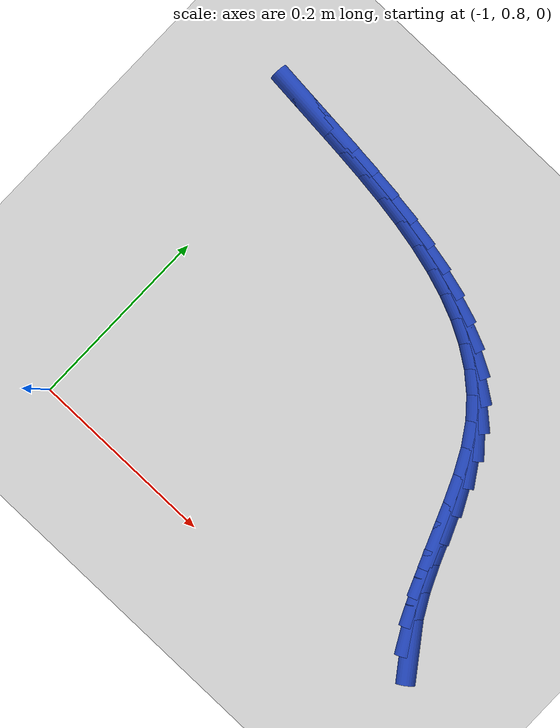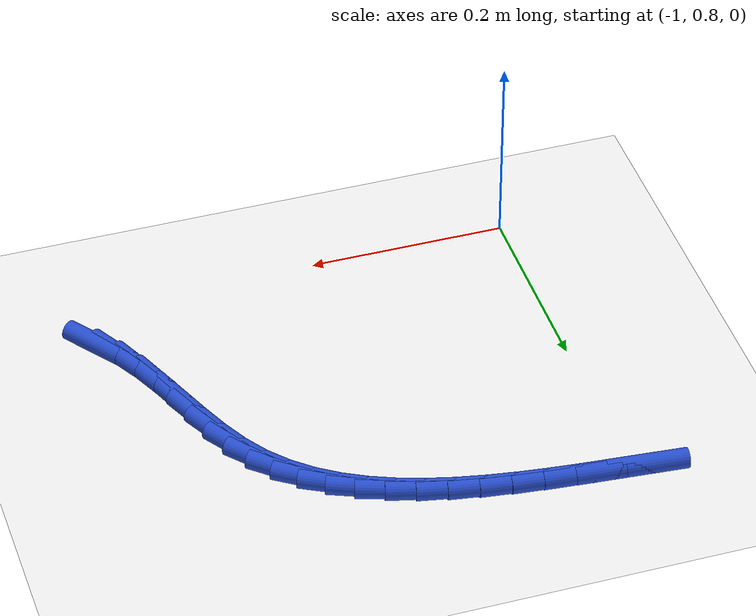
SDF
<sdf version="1.6">
 <world name="default">
  <model name="ground_plane">
   <static>1</static>
   <link name="link">
    <collision name="collision">
     <geometry><plane><normal>0 0 1</normal><size>100 100</size></plane></geometry>
     <surface><friction><ode><mu>100</mu><mu2>50</mu2></ode></friction></surface>
    </collision>
    <visual name="visual">
     <cast_shadows>0</cast_shadows>
     <geometry><plane><normal>0 0 1</normal><size>100 100</size></plane></geometry>
     <material>
      <script><uri>file://media/materials/scripts/gazebo.material</uri><name>Gazebo/WhiteGlow</name></script>
     </material>
    </visual>
   </link>
  </model>
  <model name="line">
   <link name="link_42">
    <pose>-0.56307269899656 0.8650052736421964 0.01 0 1.57 -0.9368571467097474</pose>
    <collision name="collision">
     <geometry><cylinder><radius>0.01</radius><length>0.08</length></cylinder></geometry>
    </collision>
    <visual name="visual">
     <material>
      <script><name>Gazebo/Blue</name><uri>file://media/materials/scripts/gazebo.material</uri></script>
     </material>
     <geometry><cylinder><radius>0.01</radius><length>0.08</length></cylinder></geometry>
    </visual>
   </link>
   <link name="link_43">
    <pose>-0.5792377932902318 0.8869936504903903 0.01 0 1.57 -1.0618978864356188</pose>
    <collision name="collision">
     <geometry><cylinder><radius>0.01</radius><length>0.08</length></cylinder></geometry>
    </collision>
    <visual name="visual">
     <material>
      <script><name>Gazebo/Blue</name><uri>file://media/materials/scripts/gazebo.material</uri></script>
     </material>
     <geometry><cylinder><radius>0.01</radius><length>0.08</length></cylinder></geometry>
    </visual>
   </link>
   <link name="link_44">
    <pose>-0.5931435769148546 0.9119182784585632 0.01 0 1.57 -1.1403024016664975</pose>
    <collision name="collision">
     <geometry><cylinder><radius>0.01</radius><length>0.08</length></cylinder></geometry>
    </collision>
    <visual name="visual">
     <material>
      <script><name>Gazebo/Blue</name><uri>file://media/materials/scripts/gazebo.material</uri></script>
     </material>
     <geometry><cylinder><radius>0.01</radius><length>0.08</length></cylinder></geometry>
    </visual>
   </link>
   <link name="link_45">
    <pose>-0.6055122613548761 0.9388524540209787 0.01 0 1.57 -1.1796590871038244</pose>
    <collision name="collision">
     <geometry><cylinder><radius>0.01</radius><length>0.08</length></cylinder></geometry>
    </collision>
    <visual name="visual">
     <material>
      <script><name>Gazebo/Blue</name><uri>file://media/materials/scripts/gazebo.material</uri></script>
     </material>
     <geometry><cylinder><radius>0.01</radius><length>0.08</length></cylinder></geometry>
    </visual>
   </link>
   <link name="link_46">
    <pose>-0.6170660580947434 0.9668694736519001 0.01 0 1.57 -1.184433164939543</pose>
    <collision name="collision">
     <geometry><cylinder><radius>0.01</radius><length>0.08</length></cylinder></geometry>
    </collision>
    <visual name="visual">
     <material>
      <script><name>Gazebo/Blue</name><uri>file://media/materials/scripts/gazebo.material</uri></script>
     </material>
     <geometry><cylinder><radius>0.01</radius><length>0.08</length></cylinder></geometry>
    </visual>
   </link>
   <link name="link_47">
    <pose>-0.628527178618903 0.9950426338255903 0.01 0 1.57 -1.1552652935465182</pose>
    <collision name="collision">
     <geometry><cylinder><radius>0.01</radius><length>0.08</length></cylinder></geometry>
    </collision>
    <visual name="visual">
     <material>
      <script><name>Gazebo/Blue</name><uri>file://media/materials/scripts/gazebo.material</uri></script>
     </material>
     <geometry><cylinder><radius>0.01</radius><length>0.08</length></cylinder></geometry>
    </visual>
   </link>
   <link name="link_48">
    <pose>-0.6406178344118023 1.0224452310163121 0.01 0 1.57 -1.0889638499875638</pose>
    <collision name="collision">
     <geometry><cylinder><radius>0.01</radius><length>0.08</length></cylinder></geometry>
    </collision>
    <visual name="visual">
     <material>
      <script><name>Gazebo/Blue</name><uri>file://media/materials/scripts/gazebo.material</uri></script>
     </material>
     <geometry><cylinder><radius>0.01</radius><length>0.08</length></cylinder></geometry>
    </visual>
   </link>
   <link name="link_49">
    <pose>-0.6540602369578885 1.0481505616983293 0.01 0 1.57 -0.9799105884819208</pose>
    <collision name="collision">
     <geometry><cylinder><radius>0.01</radius><length>0.08</length></cylinder></geometry>
    </collision>
    <visual name="visual">
     <material>
      <script><name>Gazebo/Blue</name><uri>file://media/materials/scripts/gazebo.material</uri></script>
     </material>
     <geometry><cylinder><radius>0.01</radius><length>0.08</length></cylinder></geometry>
    </visual>
   </link>
   <link name="link_50">
    <pose>-0.6695590361818266 1.071254158830559 0.01 0 1.57 -0.8462894560027613</pose>
    <collision name="collision">
     <geometry><cylinder><radius>0.01</radius><length>0.08</length></cylinder></geometry>
    </collision>
    <visual name="visual">
     <material>
      <script><name>Gazebo/Blue</name><uri>file://media/materials/scripts/gazebo.material</uri></script>
     </material>
     <geometry><cylinder><radius>0.01</radius><length>0.08</length></cylinder></geometry>
    </visual>
   </link>
   <link name="link_51">
    <pose>-0.6873875527972113 1.091397705343889 0.01 0 1.57 -0.716130384689412</pose>
    <collision name="collision">
     <geometry><cylinder><radius>0.01</radius><length>0.08</length></cylinder></geometry>
    </collision>
    <visual name="visual">
     <material>
      <script><name>Gazebo/Blue</name><uri>file://media/materials/scripts/gazebo.material</uri></script>
     </material>
     <geometry><cylinder><radius>0.01</radius><length>0.08</length></cylinder></geometry>
    </visual>
   </link>
   <link name="link_52">
    <pose>-0.7073719755624859 1.1087890436096202 0.01 0 1.57 -0.5956193176208316</pose>
    <collision name="collision">
     <geometry><cylinder><radius>0.01</radius><length>0.08</length></cylinder></geometry>
    </collision>
    <visual name="visual">
     <material>
      <script><name>Gazebo/Blue</name><uri>file://media/materials/scripts/gazebo.material</uri></script>
     </material>
     <geometry><cylinder><radius>0.01</radius><length>0.08</length></cylinder></geometry>
    </visual>
   </link>
   <link name="link_53">
    <pose>-0.7293177698446713 1.1236622560017093 0.01 0 1.57 -0.4880653245454407</pose>
    <collision name="collision">
     <geometry><cylinder><radius>0.01</radius><length>0.08</length></cylinder></geometry>
    </collision>
    <visual name="visual">
     <material>
      <script><name>Gazebo/Blue</name><uri>file://media/materials/scripts/gazebo.material</uri></script>
     </material>
     <geometry><cylinder><radius>0.01</radius><length>0.08</length></cylinder></geometry>
    </visual>
   </link>
   <link name="link_54">
    <pose>-0.7530304010107903 1.1362514248941138 0.01 0 1.57 -0.3949198030846811</pose>
    <collision name="collision">
     <geometry><cylinder><radius>0.01</radius><length>0.08</length></cylinder></geometry>
    </collision>
    <visual name="visual">
     <material>
      <script><name>Gazebo/Blue</name><uri>file://media/materials/scripts/gazebo.material</uri></script>
     </material>
     <geometry><cylinder><radius>0.01</radius><length>0.08</length></cylinder></geometry>
    </visual>
   </link>
   <link name="link_55">
    <pose>-0.7783153344278642 1.1467906326607893 0.01 0 1.57 -0.31619649093261326</pose>
    <collision name="collision">
     <geometry><cylinder><radius>0.01</radius><length>0.08</length></cylinder></geometry>
    </collision>
    <visual name="visual">
     <material>
      <script><name>Gazebo/Blue</name><uri>file://media/materials/scripts/gazebo.material</uri></script>
     </material>
     <geometry><cylinder><radius>0.01</radius><length>0.08</length></cylinder></geometry>
    </visual>
   </link>
   <link name="link_56">
    <pose>-0.8049780354629145 1.1555139616756922 0.01 0 1.57 -0.2510549004785778</pose>
    <collision name="collision">
     <geometry><cylinder><radius>0.01</radius><length>0.08</length></cylinder></geometry>
    </collision>
    <visual name="visual">
     <material>
      <script><name>Gazebo/Blue</name><uri>file://media/materials/scripts/gazebo.material</uri></script>
     </material>
     <geometry><cylinder><radius>0.01</radius><length>0.08</length></cylinder></geometry>
    </visual>
   </link>
   <link name="link_57">
    <pose>-0.8328239694829632 1.1626554943127796 0.01 0 1.57 -0.19829216227261964</pose>
    <collision name="collision">
     <geometry><cylinder><radius>0.01</radius><length>0.08</length></cylinder></geometry>
    </collision>
    <visual name="visual">
     <material>
      <script><name>Gazebo/Blue</name><uri>file://media/materials/scripts/gazebo.material</uri></script>
     </material>
     <geometry><cylinder><radius>0.01</radius><length>0.08</length></cylinder></geometry>
    </visual>
   </link>
   <link name="link_58">
    <pose>-0.8616586018550323 1.1684493129460078 0.01 0 1.57 -0.156666288737514</pose>
    <collision name="collision">
     <geometry><cylinder><radius>0.01</radius><length>0.08</length></cylinder></geometry>
    </collision>
    <visual name="visual">
     <material>
      <script><name>Gazebo/Blue</name><uri>file://media/materials/scripts/gazebo.material</uri></script>
     </material>
     <geometry><cylinder><radius>0.01</radius><length>0.08</length></cylinder></geometry>
    </visual>
   </link>
   <link name="link_59">
    <pose>-0.8912873979461434 1.1731294999493336 0.01 0 1.57 -0.1250742803904847</pose>
    <collision name="collision">
     <geometry><cylinder><radius>0.01</radius><length>0.08</length></cylinder></geometry>
    </collision>
    <visual name="visual">
     <material>
      <script><name>Gazebo/Blue</name><uri>file://media/materials/scripts/gazebo.material</uri></script>
     </material>
     <geometry><cylinder><radius>0.01</radius><length>0.08</length></cylinder></geometry>
    </visual>
   </link>
   <link name="link_60">
    <pose>-0.9215158231233183 1.1769301376967132 0.01 0 1.57 -0.10263542117661491</pose>
    <collision name="collision">
     <geometry><cylinder><radius>0.01</radius><length>0.08</length></cylinder></geometry>
    </collision>
    <visual name="visual">
     <material>
      <script><name>Gazebo/Blue</name><uri>file://media/materials/scripts/gazebo.material</uri></script>
     </material>
     <geometry><cylinder><radius>0.01</radius><length>0.08</length></cylinder></geometry>
    </visual>
   </link>
   <link name="link_61">
    <pose>-0.9521493427535788 1.1800853085621037 0.01 0 1.57 -0.08872312350799336</pose>
    <collision name="collision">
     <geometry><cylinder><radius>0.01</radius><length>0.08</length></cylinder></geometry>
    </collision>
    <visual name="visual">
     <material>
      <script><name>Gazebo/Blue</name><uri>file://media/materials/scripts/gazebo.material</uri></script>
     </material>
     <geometry><cylinder><radius>0.01</radius><length>0.08</length></cylinder></geometry>
    </visual>
   </link>
   <link name="link_62">
    <pose>-0.9829934222039466 1.1828290949194606 0.01 0 1.57 -0.08297417368061272</pose>
    <collision name="collision">
     <geometry><cylinder><radius>0.01</radius><length>0.08</length></cylinder></geometry>
    </collision>
    <visual name="visual">
     <material>
      <script><name>Gazebo/Blue</name><uri>file://media/materials/scripts/gazebo.material</uri></script>
     </material>
     <geometry><cylinder><radius>0.01</radius><length>0.08</length></cylinder></geometry>
    </visual>
   </link>
   <link name="link_63">
    <pose>-1.0138535268414437 1.1853955791427417 0.01 0 1.57 -0.08529218107785712</pose>
    <collision name="collision">
     <geometry><cylinder><radius>0.01</radius><length>0.08</length></cylinder></geometry>
    </collision>
    <visual name="visual">
     <material>
      <script><name>Gazebo/Blue</name><uri>file://media/materials/scripts/gazebo.material</uri></script>
     </material>
     <geometry><cylinder><radius>0.01</radius><length>0.08</length></cylinder></geometry>
    </visual>
   </link>
  </model>
 </world>
</sdf>
